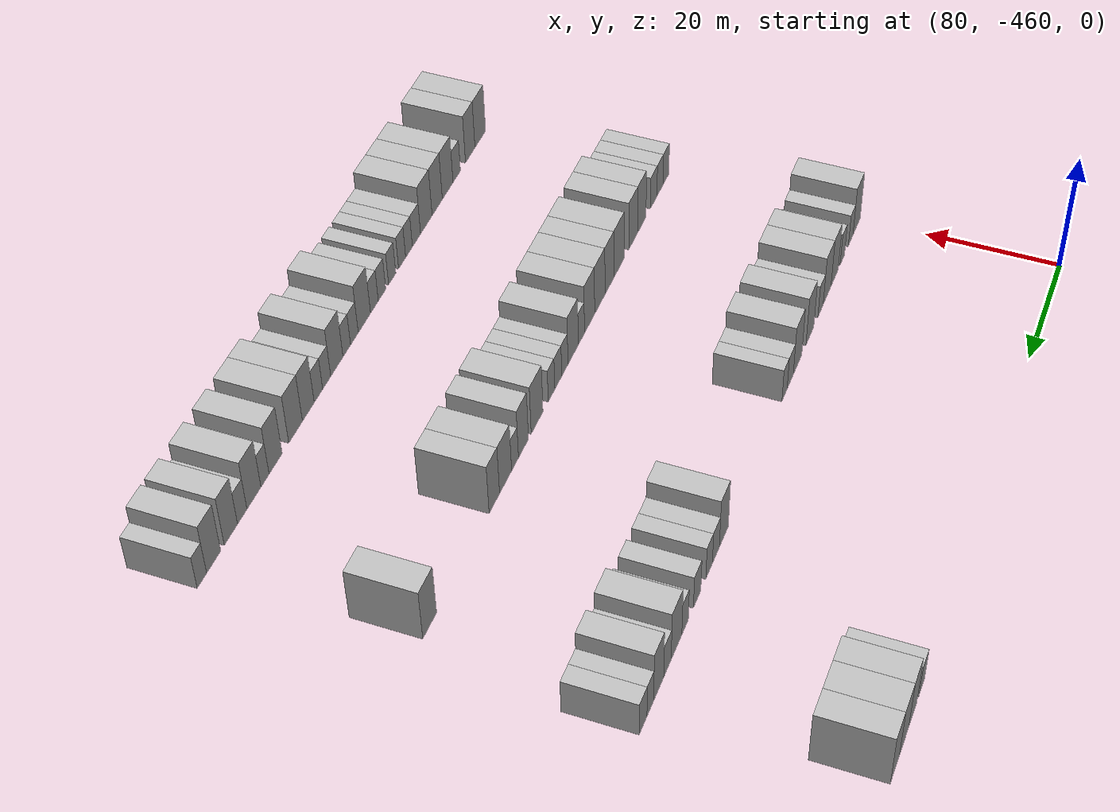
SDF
<sdf version="1.6">
 <world name="default">
  <model name="building_475">
   <static>1</static>
   <pose>85.0000 -379.9907 0 0.000000 0.000000 0.000000</pose>
   <link name="link">
    <pose>0 0 3.00 0 0 0</pose>
    <collision name="collision"><geometry><box><size>10.0000 2.8555 6.0000</size></box></geometry></collision>
    <visual name="visual">
     <cast_shadows>0</cast_shadows>
     <geometry><box><size>10.0000 2.8555 6.0000</size></box></geometry>
     <material>
      <script>
       <uri>model://HANNAS_wall/materials/scripts</uri>
       <uri>model://HANNAS_wall/materials/textures</uri>
       <name>vrc/HANNAS_wall</name>
      </script>
     </material>
    </visual>
   </link>
  </model>
  <model name="building_476">
   <static>1</static>
   <pose>85.0000 -375.6432 0 0.000000 0.000000 0.000000</pose>
   <link name="link">
    <pose>0 0 4.50 0 0 0</pose>
    <collision name="collision"><geometry><box><size>10.0000 3.8396 9.0000</size></box></geometry></collision>
    <visual name="visual">
     <cast_shadows>0</cast_shadows>
     <geometry><box><size>10.0000 3.8396 9.0000</size></box></geometry>
     <material>
      <script>
       <uri>model://HANNAS_wall/materials/scripts</uri>
       <uri>model://HANNAS_wall/materials/textures</uri>
       <name>vrc/HANNAS_wall</name>
      </script>
     </material>
    </visual>
   </link>
  </model>
  <model name="building_477">
   <static>1</static>
   <pose>85.0000 -371.5592 0 0.000000 0.000000 0.000000</pose>
   <link name="link">
    <pose>0 0 4.50 0 0 0</pose>
    <collision name="collision"><geometry><box><size>10.0000 4.3284 9.0000</size></box></geometry></collision>
    <visual name="visual">
     <cast_shadows>0</cast_shadows>
     <geometry><box><size>10.0000 4.3284 9.0000</size></box></geometry>
     <material>
      <script>
       <uri>model://HANNAS_wall/materials/scripts</uri>
       <uri>model://HANNAS_wall/materials/textures</uri>
       <name>vrc/HANNAS_wall</name>
      </script>
     </material>
    </visual>
   </link>
  </model>
  <model name="building_478">
   <static>1</static>
   <pose>85.0000 -367.3629 0 0.000000 0.000000 0.000000</pose>
   <link name="link">
    <pose>0 0 4.50 0 0 0</pose>
    <collision name="collision"><geometry><box><size>10.0000 4.0642 9.0000</size></box></geometry></collision>
    <visual name="visual">
     <cast_shadows>0</cast_shadows>
     <geometry><box><size>10.0000 4.0642 9.0000</size></box></geometry>
     <material>
      <script>
       <uri>model://HANNAS_wall/materials/scripts</uri>
       <uri>model://HANNAS_wall/materials/textures</uri>
       <name>vrc/HANNAS_wall</name>
      </script>
     </material>
    </visual>
   </link>
  </model>
  <model name="building_671">
   <static>1</static>
   <pose>115.0000 -458.0206 0 0.000000 0.000000 0.000000</pose>
   <link name="link">
    <pose>0 0 4.50 0 0 0</pose>
    <collision name="collision"><geometry><box><size>10.0000 3.9589 9.0000</size></box></geometry></collision>
    <visual name="visual">
     <cast_shadows>0</cast_shadows>
     <geometry><box><size>10.0000 3.9589 9.0000</size></box></geometry>
     <material>
      <script>
       <uri>model://HANNAS_wall/materials/scripts</uri>
       <uri>model://HANNAS_wall/materials/textures</uri>
       <name>vrc/HANNAS_wall</name>
      </script>
     </material>
    </visual>
   </link>
  </model>
  <model name="building_672">
   <static>1</static>
   <pose>115.0000 -454.7772 0 0.000000 0.000000 0.000000</pose>
   <link name="link">
    <pose>0 0 3.00 0 0 0</pose>
    <collision name="collision"><geometry><box><size>10.0000 2.5280 6.0000</size></box></geometry></collision>
    <visual name="visual">
     <cast_shadows>0</cast_shadows>
     <geometry><box><size>10.0000 2.5280 6.0000</size></box></geometry>
     <material>
      <script>
       <uri>model://HANNAS_wall/materials/scripts</uri>
       <uri>model://HANNAS_wall/materials/textures</uri>
       <name>vrc/HANNAS_wall</name>
      </script>
     </material>
    </visual>
   </link>
  </model>
  <model name="building_673">
   <static>1</static>
   <pose>115.0000 -450.3102 0 0.000000 0.000000 0.000000</pose>
   <link name="link">
    <pose>0 0 3.00 0 0 0</pose>
    <collision name="collision"><geometry><box><size>10.0000 2.4059 6.0000</size></box></geometry></collision>
    <visual name="visual">
     <cast_shadows>0</cast_shadows>
     <geometry><box><size>10.0000 2.4059 6.0000</size></box></geometry>
     <material>
      <script>
       <uri>model://HANNAS_wall/materials/scripts</uri>
       <uri>model://HANNAS_wall/materials/textures</uri>
       <name>vrc/HANNAS_wall</name>
      </script>
     </material>
    </visual>
   </link>
  </model>
  <model name="building_674">
   <static>1</static>
   <pose>115.0000 -446.2440 0 0.000000 0.000000 0.000000</pose>
   <link name="link">
    <pose>0 0 4.50 0 0 0</pose>
    <collision name="collision"><geometry><box><size>10.0000 3.7266 9.0000</size></box></geometry></collision>
    <visual name="visual">
     <cast_shadows>0</cast_shadows>
     <geometry><box><size>10.0000 3.7266 9.0000</size></box></geometry>
     <material>
      <script>
       <uri>model://HANNAS_wall/materials/scripts</uri>
       <uri>model://HANNAS_wall/materials/textures</uri>
       <name>vrc/HANNAS_wall</name>
      </script>
     </material>
    </visual>
   </link>
  </model>
  <model name="building_675">
   <static>1</static>
   <pose>115.0000 -442.3787 0 0.000000 0.000000 0.000000</pose>
   <link name="link">
    <pose>0 0 4.50 0 0 0</pose>
    <collision name="collision"><geometry><box><size>10.0000 4.0040 9.0000</size></box></geometry></collision>
    <visual name="visual">
     <cast_shadows>0</cast_shadows>
     <geometry><box><size>10.0000 4.0040 9.0000</size></box></geometry>
     <material>
      <script>
       <uri>model://HANNAS_wall/materials/scripts</uri>
       <uri>model://HANNAS_wall/materials/textures</uri>
       <name>vrc/HANNAS_wall</name>
      </script>
     </material>
    </visual>
   </link>
  </model>
  <model name="building_676">
   <static>1</static>
   <pose>115.0000 -439.0188 0 0.000000 0.000000 0.000000</pose>
   <link name="link">
    <pose>0 0 3.00 0 0 0</pose>
    <collision name="collision"><geometry><box><size>10.0000 2.7158 6.0000</size></box></geometry></collision>
    <visual name="visual">
     <cast_shadows>0</cast_shadows>
     <geometry><box><size>10.0000 2.7158 6.0000</size></box></geometry>
     <material>
      <script>
       <uri>model://HANNAS_wall/materials/scripts</uri>
       <uri>model://HANNAS_wall/materials/textures</uri>
       <name>vrc/HANNAS_wall</name>
      </script>
     </material>
    </visual>
   </link>
  </model>
  <model name="building_677">
   <static>1</static>
   <pose>115.0000 -433.6947 0 0.000000 0.000000 0.000000</pose>
   <link name="link">
    <pose>0 0 4.50 0 0 0</pose>
    <collision name="collision"><geometry><box><size>10.0000 3.9324 9.0000</size></box></geometry></collision>
    <visual name="visual">
     <cast_shadows>0</cast_shadows>
     <geometry><box><size>10.0000 3.9324 9.0000</size></box></geometry>
     <material>
      <script>
       <uri>model://HANNAS_wall/materials/scripts</uri>
       <uri>model://HANNAS_wall/materials/textures</uri>
       <name>vrc/HANNAS_wall</name>
      </script>
     </material>
    </visual>
   </link>
  </model>
  <model name="building_678">
   <static>1</static>
   <pose>115.0000 -427.6711 0 0.000000 0.000000 0.000000</pose>
   <link name="link">
    <pose>0 0 4.50 0 0 0</pose>
    <collision name="collision"><geometry><box><size>10.0000 4.1148 9.0000</size></box></geometry></collision>
    <visual name="visual">
     <cast_shadows>0</cast_shadows>
     <geometry><box><size>10.0000 4.1148 9.0000</size></box></geometry>
     <material>
      <script>
       <uri>model://HANNAS_wall/materials/scripts</uri>
       <uri>model://HANNAS_wall/materials/textures</uri>
       <name>vrc/HANNAS_wall</name>
      </script>
     </material>
    </visual>
   </link>
  </model>
  <model name="building_679">
   <static>1</static>
   <pose>115.0000 -424.1530 0 0.000000 0.000000 0.000000</pose>
   <link name="link">
    <pose>0 0 3.00 0 0 0</pose>
    <collision name="collision"><geometry><box><size>10.0000 2.9214 6.0000</size></box></geometry></collision>
    <visual name="visual">
     <cast_shadows>0</cast_shadows>
     <geometry><box><size>10.0000 2.9214 6.0000</size></box></geometry>
     <material>
      <script>
       <uri>model://HANNAS_wall/materials/scripts</uri>
       <uri>model://HANNAS_wall/materials/textures</uri>
       <name>vrc/HANNAS_wall</name>
      </script>
     </material>
    </visual>
   </link>
  </model>
  <model name="building_680">
   <static>1</static>
   <pose>115.0000 -421.4635 0 0.000000 0.000000 0.000000</pose>
   <link name="link">
    <pose>0 0 3.00 0 0 0</pose>
    <collision name="collision"><geometry><box><size>10.0000 2.4577 6.0000</size></box></geometry></collision>
    <visual name="visual">
     <cast_shadows>0</cast_shadows>
     <geometry><box><size>10.0000 2.4577 6.0000</size></box></geometry>
     <material>
      <script>
       <uri>model://HANNAS_wall/materials/scripts</uri>
       <uri>model://HANNAS_wall/materials/textures</uri>
       <name>vrc/HANNAS_wall</name>
      </script>
     </material>
    </visual>
   </link>
  </model>
  <model name="building_681">
   <static>1</static>
   <pose>115.0000 -394.5818 0 0.000000 0.000000 0.000000</pose>
   <link name="link">
    <pose>0 0 4.50 0 0 0</pose>
    <collision name="collision"><geometry><box><size>10.0000 3.7686 9.0000</size></box></geometry></collision>
    <visual name="visual">
     <cast_shadows>0</cast_shadows>
     <geometry><box><size>10.0000 3.7686 9.0000</size></box></geometry>
     <material>
      <script>
       <uri>model://HANNAS_wall/materials/scripts</uri>
       <uri>model://HANNAS_wall/materials/textures</uri>
       <name>vrc/HANNAS_wall</name>
      </script>
     </material>
    </visual>
   </link>
  </model>
  <model name="building_682">
   <static>1</static>
   <pose>115.0000 -391.2707 0 0.000000 0.000000 0.000000</pose>
   <link name="link">
    <pose>0 0 3.00 0 0 0</pose>
    <collision name="collision"><geometry><box><size>10.0000 2.8538 6.0000</size></box></geometry></collision>
    <visual name="visual">
     <cast_shadows>0</cast_shadows>
     <geometry><box><size>10.0000 2.8538 6.0000</size></box></geometry>
     <material>
      <script>
       <uri>model://HANNAS_wall/materials/scripts</uri>
       <uri>model://HANNAS_wall/materials/textures</uri>
       <name>vrc/HANNAS_wall</name>
      </script>
     </material>
    </visual>
   </link>
  </model>
  <model name="building_683">
   <static>1</static>
   <pose>115.0000 -388.5188 0 0.000000 0.000000 0.000000</pose>
   <link name="link">
    <pose>0 0 3.00 0 0 0</pose>
    <collision name="collision"><geometry><box><size>10.0000 2.6500 6.0000</size></box></geometry></collision>
    <visual name="visual">
     <cast_shadows>0</cast_shadows>
     <geometry><box><size>10.0000 2.6500 6.0000</size></box></geometry>
     <material>
      <script>
       <uri>model://HANNAS_wall/materials/scripts</uri>
       <uri>model://HANNAS_wall/materials/textures</uri>
       <name>vrc/HANNAS_wall</name>
      </script>
     </material>
    </visual>
   </link>
  </model>
  <model name="building_684">
   <static>1</static>
   <pose>115.0000 -383.7218 0 0.000000 0.000000 0.000000</pose>
   <link name="link">
    <pose>0 0 3.00 0 0 0</pose>
    <collision name="collision"><geometry><box><size>10.0000 2.9440 6.0000</size></box></geometry></collision>
    <visual name="visual">
     <cast_shadows>0</cast_shadows>
     <geometry><box><size>10.0000 2.9440 6.0000</size></box></geometry>
     <material>
      <script>
       <uri>model://HANNAS_wall/materials/scripts</uri>
       <uri>model://HANNAS_wall/materials/textures</uri>
       <name>vrc/HANNAS_wall</name>
      </script>
     </material>
    </visual>
   </link>
  </model>
  <model name="building_685">
   <static>1</static>
   <pose>115.0000 -378.9825 0 0.000000 0.000000 0.000000</pose>
   <link name="link">
    <pose>0 0 3.00 0 0 0</pose>
    <collision name="collision"><geometry><box><size>10.0000 2.5347 6.0000</size></box></geometry></collision>
    <visual name="visual">
     <cast_shadows>0</cast_shadows>
     <geometry><box><size>10.0000 2.5347 6.0000</size></box></geometry>
     <material>
      <script>
       <uri>model://HANNAS_wall/materials/scripts</uri>
       <uri>model://HANNAS_wall/materials/textures</uri>
       <name>vrc/HANNAS_wall</name>
      </script>
     </material>
    </visual>
   </link>
  </model>
  <model name="building_686">
   <static>1</static>
   <pose>115.0000 -375.6834 0 0.000000 0.000000 0.000000</pose>
   <link name="link">
    <pose>0 0 4.50 0 0 0</pose>
    <collision name="collision"><geometry><box><size>10.0000 4.0635 9.0000</size></box></geometry></collision>
    <visual name="visual">
     <cast_shadows>0</cast_shadows>
     <geometry><box><size>10.0000 4.0635 9.0000</size></box></geometry>
     <material>
      <script>
       <uri>model://HANNAS_wall/materials/scripts</uri>
       <uri>model://HANNAS_wall/materials/textures</uri>
       <name>vrc/HANNAS_wall</name>
      </script>
     </material>
    </visual>
   </link>
  </model>
  <model name="building_687">
   <static>1</static>
   <pose>115.0000 -372.2460 0 0.000000 0.000000 0.000000</pose>
   <link name="link">
    <pose>0 0 3.00 0 0 0</pose>
    <collision name="collision"><geometry><box><size>10.0000 2.8113 6.0000</size></box></geometry></collision>
    <visual name="visual">
     <cast_shadows>0</cast_shadows>
     <geometry><box><size>10.0000 2.8113 6.0000</size></box></geometry>
     <material>
      <script>
       <uri>model://HANNAS_wall/materials/scripts</uri>
       <uri>model://HANNAS_wall/materials/textures</uri>
       <name>vrc/HANNAS_wall</name>
      </script>
     </material>
    </visual>
   </link>
  </model>
  <model name="building_688">
   <static>1</static>
   <pose>115.0000 -368.9955 0 0.000000 0.000000 0.000000</pose>
   <link name="link">
    <pose>0 0 4.50 0 0 0</pose>
    <collision name="collision"><geometry><box><size>10.0000 3.6896 9.0000</size></box></geometry></collision>
    <visual name="visual">
     <cast_shadows>0</cast_shadows>
     <geometry><box><size>10.0000 3.6896 9.0000</size></box></geometry>
     <material>
      <script>
       <uri>model://HANNAS_wall/materials/scripts</uri>
       <uri>model://HANNAS_wall/materials/textures</uri>
       <name>vrc/HANNAS_wall</name>
      </script>
     </material>
    </visual>
   </link>
  </model>
  <model name="building_689">
   <static>1</static>
   <pose>115.0000 -365.9206 0 0.000000 0.000000 0.000000</pose>
   <link name="link">
    <pose>0 0 3.00 0 0 0</pose>
    <collision name="collision"><geometry><box><size>10.0000 2.4603 6.0000</size></box></geometry></collision>
    <visual name="visual">
     <cast_shadows>0</cast_shadows>
     <geometry><box><size>10.0000 2.4603 6.0000</size></box></geometry>
     <material>
      <script>
       <uri>model://HANNAS_wall/materials/scripts</uri>
       <uri>model://HANNAS_wall/materials/textures</uri>
       <name>vrc/HANNAS_wall</name>
      </script>
     </material>
    </visual>
   </link>
  </model>
  <model name="building_690">
   <static>1</static>
   <pose>115.0000 -363.3008 0 0.000000 0.000000 0.000000</pose>
   <link name="link">
    <pose>0 0 3.00 0 0 0</pose>
    <collision name="collision"><geometry><box><size>10.0000 2.7793 6.0000</size></box></geometry></collision>
    <visual name="visual">
     <cast_shadows>0</cast_shadows>
     <geometry><box><size>10.0000 2.7793 6.0000</size></box></geometry>
     <material>
      <script>
       <uri>model://HANNAS_wall/materials/scripts</uri>
       <uri>model://HANNAS_wall/materials/textures</uri>
       <name>vrc/HANNAS_wall</name>
      </script>
     </material>
    </visual>
   </link>
  </model>
  <model name="building_893">
   <static>1</static>
   <pose>145.0000 -458.6550 0 0.000000 0.000000 0.000000</pose>
   <link name="link">
    <pose>0 0 3.00 0 0 0</pose>
    <collision name="collision"><geometry><box><size>10.0000 2.6901 6.0000</size></box></geometry></collision>
    <visual name="visual">
     <cast_shadows>0</cast_shadows>
     <geometry><box><size>10.0000 2.6901 6.0000</size></box></geometry>
     <material>
      <script>
       <uri>model://HANNAS_wall/materials/scripts</uri>
       <uri>model://HANNAS_wall/materials/textures</uri>
       <name>vrc/HANNAS_wall</name>
      </script>
     </material>
    </visual>
   </link>
  </model>
  <model name="building_894">
   <static>1</static>
   <pose>145.0000 -455.9149 0 0.000000 0.000000 0.000000</pose>
   <link name="link">
    <pose>0 0 3.00 0 0 0</pose>
    <collision name="collision"><geometry><box><size>10.0000 2.7900 6.0000</size></box></geometry></collision>
    <visual name="visual">
     <cast_shadows>0</cast_shadows>
     <geometry><box><size>10.0000 2.7900 6.0000</size></box></geometry>
     <material>
      <script>
       <uri>model://HANNAS_wall/materials/scripts</uri>
       <uri>model://HANNAS_wall/materials/textures</uri>
       <name>vrc/HANNAS_wall</name>
      </script>
     </material>
    </visual>
   </link>
  </model>
  <model name="building_895">
   <static>1</static>
   <pose>145.0000 -453.0426 0 0.000000 0.000000 0.000000</pose>
   <link name="link">
    <pose>0 0 3.00 0 0 0</pose>
    <collision name="collision"><geometry><box><size>10.0000 2.9546 6.0000</size></box></geometry></collision>
    <visual name="visual">
     <cast_shadows>0</cast_shadows>
     <geometry><box><size>10.0000 2.9546 6.0000</size></box></geometry>
     <material>
      <script>
       <uri>model://HANNAS_wall/materials/scripts</uri>
       <uri>model://HANNAS_wall/materials/textures</uri>
       <name>vrc/HANNAS_wall</name>
      </script>
     </material>
    </visual>
   </link>
  </model>
  <model name="building_896">
   <static>1</static>
   <pose>145.0000 -447.7108 0 0.000000 0.000000 0.000000</pose>
   <link name="link">
    <pose>0 0 4.50 0 0 0</pose>
    <collision name="collision"><geometry><box><size>10.0000 3.7089 9.0000</size></box></geometry></collision>
    <visual name="visual">
     <cast_shadows>0</cast_shadows>
     <geometry><box><size>10.0000 3.7089 9.0000</size></box></geometry>
     <material>
      <script>
       <uri>model://HANNAS_wall/materials/scripts</uri>
       <uri>model://HANNAS_wall/materials/textures</uri>
       <name>vrc/HANNAS_wall</name>
      </script>
     </material>
    </visual>
   </link>
  </model>
  <model name="building_897">
   <static>1</static>
   <pose>145.0000 -443.9258 0 0.000000 0.000000 0.000000</pose>
   <link name="link">
    <pose>0 0 4.50 0 0 0</pose>
    <collision name="collision"><geometry><box><size>10.0000 3.8612 9.0000</size></box></geometry></collision>
    <visual name="visual">
     <cast_shadows>0</cast_shadows>
     <geometry><box><size>10.0000 3.8612 9.0000</size></box></geometry>
     <material>
      <script>
       <uri>model://HANNAS_wall/materials/scripts</uri>
       <uri>model://HANNAS_wall/materials/textures</uri>
       <name>vrc/HANNAS_wall</name>
      </script>
     </material>
    </visual>
   </link>
  </model>
  <model name="building_898">
   <static>1</static>
   <pose>145.0000 -437.7957 0 0.000000 0.000000 0.000000</pose>
   <link name="link">
    <pose>0 0 4.50 0 0 0</pose>
    <collision name="collision"><geometry><box><size>10.0000 4.3989 9.0000</size></box></geometry></collision>
    <visual name="visual">
     <cast_shadows>0</cast_shadows>
     <geometry><box><size>10.0000 4.3989 9.0000</size></box></geometry>
     <material>
      <script>
       <uri>model://HANNAS_wall/materials/scripts</uri>
       <uri>model://HANNAS_wall/materials/textures</uri>
       <name>vrc/HANNAS_wall</name>
      </script>
     </material>
    </visual>
   </link>
  </model>
  <model name="building_899">
   <static>1</static>
   <pose>145.0000 -433.7573 0 0.000000 0.000000 0.000000</pose>
   <link name="link">
    <pose>0 0 4.50 0 0 0</pose>
    <collision name="collision"><geometry><box><size>10.0000 3.6780 9.0000</size></box></geometry></collision>
    <visual name="visual">
     <cast_shadows>0</cast_shadows>
     <geometry><box><size>10.0000 3.6780 9.0000</size></box></geometry>
     <material>
      <script>
       <uri>model://HANNAS_wall/materials/scripts</uri>
       <uri>model://HANNAS_wall/materials/textures</uri>
       <name>vrc/HANNAS_wall</name>
      </script>
     </material>
    </visual>
   </link>
  </model>
  <model name="building_900">
   <static>1</static>
   <pose>145.0000 -429.7781 0 0.000000 0.000000 0.000000</pose>
   <link name="link">
    <pose>0 0 4.50 0 0 0</pose>
    <collision name="collision"><geometry><box><size>10.0000 4.2804 9.0000</size></box></geometry></collision>
    <visual name="visual">
     <cast_shadows>0</cast_shadows>
     <geometry><box><size>10.0000 4.2804 9.0000</size></box></geometry>
     <material>
      <script>
       <uri>model://HANNAS_wall/materials/scripts</uri>
       <uri>model://HANNAS_wall/materials/textures</uri>
       <name>vrc/HANNAS_wall</name>
      </script>
     </material>
    </visual>
   </link>
  </model>
  <model name="building_901">
   <static>1</static>
   <pose>145.0000 -425.5736 0 0.000000 0.000000 0.000000</pose>
   <link name="link">
    <pose>0 0 4.50 0 0 0</pose>
    <collision name="collision"><geometry><box><size>10.0000 4.1284 9.0000</size></box></geometry></collision>
    <visual name="visual">
     <cast_shadows>0</cast_shadows>
     <geometry><box><size>10.0000 4.1284 9.0000</size></box></geometry>
     <material>
      <script>
       <uri>model://HANNAS_wall/materials/scripts</uri>
       <uri>model://HANNAS_wall/materials/textures</uri>
       <name>vrc/HANNAS_wall</name>
      </script>
     </material>
    </visual>
   </link>
  </model>
  <model name="building_902">
   <static>1</static>
   <pose>145.0000 -422.2871 0 0.000000 0.000000 0.000000</pose>
   <link name="link">
    <pose>0 0 3.00 0 0 0</pose>
    <collision name="collision"><geometry><box><size>10.0000 2.4446 6.0000</size></box></geometry></collision>
    <visual name="visual">
     <cast_shadows>0</cast_shadows>
     <geometry><box><size>10.0000 2.4446 6.0000</size></box></geometry>
     <material>
      <script>
       <uri>model://HANNAS_wall/materials/scripts</uri>
       <uri>model://HANNAS_wall/materials/textures</uri>
       <name>vrc/HANNAS_wall</name>
      </script>
     </material>
    </visual>
   </link>
  </model>
  <model name="building_903">
   <static>1</static>
   <pose>145.0000 -419.0156 0 0.000000 0.000000 0.000000</pose>
   <link name="link">
    <pose>0 0 4.50 0 0 0</pose>
    <collision name="collision"><geometry><box><size>10.0000 4.0984 9.0000</size></box></geometry></collision>
    <visual name="visual">
     <cast_shadows>0</cast_shadows>
     <geometry><box><size>10.0000 4.0984 9.0000</size></box></geometry>
     <material>
      <script>
       <uri>model://HANNAS_wall/materials/scripts</uri>
       <uri>model://HANNAS_wall/materials/textures</uri>
       <name>vrc/HANNAS_wall</name>
      </script>
     </material>
    </visual>
   </link>
  </model>
  <model name="building_904">
   <static>1</static>
   <pose>145.0000 -415.7482 0 0.000000 0.000000 0.000000</pose>
   <link name="link">
    <pose>0 0 3.00 0 0 0</pose>
    <collision name="collision"><geometry><box><size>10.0000 2.4365 6.0000</size></box></geometry></collision>
    <visual name="visual">
     <cast_shadows>0</cast_shadows>
     <geometry><box><size>10.0000 2.4365 6.0000</size></box></geometry>
     <material>
      <script>
       <uri>model://HANNAS_wall/materials/scripts</uri>
       <uri>model://HANNAS_wall/materials/textures</uri>
       <name>vrc/HANNAS_wall</name>
      </script>
     </material>
    </visual>
   </link>
  </model>
  <model name="building_905">
   <static>1</static>
   <pose>145.0000 -413.1982 0 0.000000 0.000000 0.000000</pose>
   <link name="link">
    <pose>0 0 3.00 0 0 0</pose>
    <collision name="collision"><geometry><box><size>10.0000 2.6635 6.0000</size></box></geometry></collision>
    <visual name="visual">
     <cast_shadows>0</cast_shadows>
     <geometry><box><size>10.0000 2.6635 6.0000</size></box></geometry>
     <material>
      <script>
       <uri>model://HANNAS_wall/materials/scripts</uri>
       <uri>model://HANNAS_wall/materials/textures</uri>
       <name>vrc/HANNAS_wall</name>
      </script>
     </material>
    </visual>
   </link>
  </model>
  <model name="building_906">
   <static>1</static>
   <pose>145.0000 -410.6186 0 0.000000 0.000000 0.000000</pose>
   <link name="link">
    <pose>0 0 3.00 0 0 0</pose>
    <collision name="collision"><geometry><box><size>10.0000 2.4957 6.0000</size></box></geometry></collision>
    <visual name="visual">
     <cast_shadows>0</cast_shadows>
     <geometry><box><size>10.0000 2.4957 6.0000</size></box></geometry>
     <material>
      <script>
       <uri>model://HANNAS_wall/materials/scripts</uri>
       <uri>model://HANNAS_wall/materials/textures</uri>
       <name>vrc/HANNAS_wall</name>
      </script>
     </material>
    </visual>
   </link>
  </model>
  <model name="building_907">
   <static>1</static>
   <pose>145.0000 -405.1858 0 0.000000 0.000000 0.000000</pose>
   <link name="link">
    <pose>0 0 4.50 0 0 0</pose>
    <collision name="collision"><geometry><box><size>10.0000 4.3701 9.0000</size></box></geometry></collision>
    <visual name="visual">
     <cast_shadows>0</cast_shadows>
     <geometry><box><size>10.0000 4.3701 9.0000</size></box></geometry>
     <material>
      <script>
       <uri>model://HANNAS_wall/materials/scripts</uri>
       <uri>model://HANNAS_wall/materials/textures</uri>
       <name>vrc/HANNAS_wall</name>
      </script>
     </material>
    </visual>
   </link>
  </model>
  <model name="building_908">
   <static>1</static>
   <pose>145.0000 -400.1877 0 0.000000 0.000000 0.000000</pose>
   <link name="link">
    <pose>0 0 4.50 0 0 0</pose>
    <collision name="collision"><geometry><box><size>10.0000 3.6261 9.0000</size></box></geometry></collision>
    <visual name="visual">
     <cast_shadows>0</cast_shadows>
     <geometry><box><size>10.0000 3.6261 9.0000</size></box></geometry>
     <material>
      <script>
       <uri>model://HANNAS_wall/materials/scripts</uri>
       <uri>model://HANNAS_wall/materials/textures</uri>
       <name>vrc/HANNAS_wall</name>
      </script>
     </material>
    </visual>
   </link>
  </model>
  <model name="building_909">
   <static>1</static>
   <pose>145.0000 -397.1473 0 0.000000 0.000000 0.000000</pose>
   <link name="link">
    <pose>0 0 3.00 0 0 0</pose>
    <collision name="collision"><geometry><box><size>10.0000 2.4546 6.0000</size></box></geometry></collision>
    <visual name="visual">
     <cast_shadows>0</cast_shadows>
     <geometry><box><size>10.0000 2.4546 6.0000</size></box></geometry>
     <material>
      <script>
       <uri>model://HANNAS_wall/materials/scripts</uri>
       <uri>model://HANNAS_wall/materials/textures</uri>
       <name>vrc/HANNAS_wall</name>
      </script>
     </material>
    </visual>
   </link>
  </model>
  <model name="building_910">
   <static>1</static>
   <pose>145.0000 -393.7917 0 0.000000 0.000000 0.000000</pose>
   <link name="link">
    <pose>0 0 4.50 0 0 0</pose>
    <collision name="collision"><geometry><box><size>10.0000 4.2566 9.0000</size></box></geometry></collision>
    <visual name="visual">
     <cast_shadows>0</cast_shadows>
     <geometry><box><size>10.0000 4.2566 9.0000</size></box></geometry>
     <material>
      <script>
       <uri>model://HANNAS_wall/materials/scripts</uri>
       <uri>model://HANNAS_wall/materials/textures</uri>
       <name>vrc/HANNAS_wall</name>
      </script>
     </material>
    </visual>
   </link>
  </model>
  <model name="building_911">
   <static>1</static>
   <pose>145.0000 -389.8491 0 0.000000 0.000000 0.000000</pose>
   <link name="link">
    <pose>0 0 4.50 0 0 0</pose>
    <collision name="collision"><geometry><box><size>10.0000 3.6285 9.0000</size></box></geometry></collision>
    <visual name="visual">
     <cast_shadows>0</cast_shadows>
     <geometry><box><size>10.0000 3.6285 9.0000</size></box></geometry>
     <material>
      <script>
       <uri>model://HANNAS_wall/materials/scripts</uri>
       <uri>model://HANNAS_wall/materials/textures</uri>
       <name>vrc/HANNAS_wall</name>
      </script>
     </material>
    </visual>
   </link>
  </model>
  <model name="building_912">
   <static>1</static>
   <pose>145.0000 -368.4976 0 0.000000 0.000000 0.000000</pose>
   <link name="link">
    <pose>0 0 4.50 0 0 0</pose>
    <collision name="collision"><geometry><box><size>10.0000 4.3581 9.0000</size></box></geometry></collision>
    <visual name="visual">
     <cast_shadows>0</cast_shadows>
     <geometry><box><size>10.0000 4.3581 9.0000</size></box></geometry>
     <material>
      <script>
       <uri>model://HANNAS_wall/materials/scripts</uri>
       <uri>model://HANNAS_wall/materials/textures</uri>
       <name>vrc/HANNAS_wall</name>
      </script>
     </material>
    </visual>
   </link>
  </model>
  <model name="building_1118">
   <static>1</static>
   <pose>175.0000 -457.8582 0 0.000000 0.000000 0.000000</pose>
   <link name="link">
    <pose>0 0 4.50 0 0 0</pose>
    <collision name="collision"><geometry><box><size>10.0000 4.2835 9.0000</size></box></geometry></collision>
    <visual name="visual">
     <cast_shadows>0</cast_shadows>
     <geometry><box><size>10.0000 4.2835 9.0000</size></box></geometry>
     <material>
      <script>
       <uri>model://HANNAS_wall/materials/scripts</uri>
       <uri>model://HANNAS_wall/materials/textures</uri>
       <name>vrc/HANNAS_wall</name>
      </script>
     </material>
    </visual>
   </link>
  </model>
  <model name="building_1119">
   <static>1</static>
   <pose>175.0000 -453.8347 0 0.000000 0.000000 0.000000</pose>
   <link name="link">
    <pose>0 0 4.50 0 0 0</pose>
    <collision name="collision"><geometry><box><size>10.0000 3.7635 9.0000</size></box></geometry></collision>
    <visual name="visual">
     <cast_shadows>0</cast_shadows>
     <geometry><box><size>10.0000 3.7635 9.0000</size></box></geometry>
     <material>
      <script>
       <uri>model://HANNAS_wall/materials/scripts</uri>
       <uri>model://HANNAS_wall/materials/textures</uri>
       <name>vrc/HANNAS_wall</name>
      </script>
     </material>
    </visual>
   </link>
  </model>
  <model name="building_1120">
   <static>1</static>
   <pose>175.0000 -448.5138 0 0.000000 0.000000 0.000000</pose>
   <link name="link">
    <pose>0 0 3.00 0 0 0</pose>
    <collision name="collision"><geometry><box><size>10.0000 2.8783 6.0000</size></box></geometry></collision>
    <visual name="visual">
     <cast_shadows>0</cast_shadows>
     <geometry><box><size>10.0000 2.8783 6.0000</size></box></geometry>
     <material>
      <script>
       <uri>model://HANNAS_wall/materials/scripts</uri>
       <uri>model://HANNAS_wall/materials/textures</uri>
       <name>vrc/HANNAS_wall</name>
      </script>
     </material>
    </visual>
   </link>
  </model>
  <model name="building_1121">
   <static>1</static>
   <pose>175.0000 -445.0196 0 0.000000 0.000000 0.000000</pose>
   <link name="link">
    <pose>0 0 4.50 0 0 0</pose>
    <collision name="collision"><geometry><box><size>10.0000 4.1102 9.0000</size></box></geometry></collision>
    <visual name="visual">
     <cast_shadows>0</cast_shadows>
     <geometry><box><size>10.0000 4.1102 9.0000</size></box></geometry>
     <material>
      <script>
       <uri>model://HANNAS_wall/materials/scripts</uri>
       <uri>model://HANNAS_wall/materials/textures</uri>
       <name>vrc/HANNAS_wall</name>
      </script>
     </material>
    </visual>
   </link>
  </model>
  <model name="building_1122">
   <static>1</static>
   <pose>175.0000 -441.0266 0 0.000000 0.000000 0.000000</pose>
   <link name="link">
    <pose>0 0 4.50 0 0 0</pose>
    <collision name="collision"><geometry><box><size>10.0000 3.8758 9.0000</size></box></geometry></collision>
    <visual name="visual">
     <cast_shadows>0</cast_shadows>
     <geometry><box><size>10.0000 3.8758 9.0000</size></box></geometry>
     <material>
      <script>
       <uri>model://HANNAS_wall/materials/scripts</uri>
       <uri>model://HANNAS_wall/materials/textures</uri>
       <name>vrc/HANNAS_wall</name>
      </script>
     </material>
    </visual>
   </link>
  </model>
  <model name="building_1123">
   <static>1</static>
   <pose>175.0000 -436.9400 0 0.000000 0.000000 0.000000</pose>
   <link name="link">
    <pose>0 0 4.50 0 0 0</pose>
    <collision name="collision"><geometry><box><size>10.0000 4.2973 9.0000</size></box></geometry></collision>
    <visual name="visual">
     <cast_shadows>0</cast_shadows>
     <geometry><box><size>10.0000 4.2973 9.0000</size></box></geometry>
     <material>
      <script>
       <uri>model://HANNAS_wall/materials/scripts</uri>
       <uri>model://HANNAS_wall/materials/textures</uri>
       <name>vrc/HANNAS_wall</name>
      </script>
     </material>
    </visual>
   </link>
  </model>
  <model name="building_1124">
   <static>1</static>
   <pose>175.0000 -433.2973 0 0.000000 0.000000 0.000000</pose>
   <link name="link">
    <pose>0 0 3.00 0 0 0</pose>
    <collision name="collision"><geometry><box><size>10.0000 2.9881 6.0000</size></box></geometry></collision>
    <visual name="visual">
     <cast_shadows>0</cast_shadows>
     <geometry><box><size>10.0000 2.9881 6.0000</size></box></geometry>
     <material>
      <script>
       <uri>model://HANNAS_wall/materials/scripts</uri>
       <uri>model://HANNAS_wall/materials/textures</uri>
       <name>vrc/HANNAS_wall</name>
      </script>
     </material>
    </visual>
   </link>
  </model>
  <model name="building_1125">
   <static>1</static>
   <pose>175.0000 -430.5783 0 0.000000 0.000000 0.000000</pose>
   <link name="link">
    <pose>0 0 3.00 0 0 0</pose>
    <collision name="collision"><geometry><box><size>10.0000 2.4498 6.0000</size></box></geometry></collision>
    <visual name="visual">
     <cast_shadows>0</cast_shadows>
     <geometry><box><size>10.0000 2.4498 6.0000</size></box></geometry>
     <material>
      <script>
       <uri>model://HANNAS_wall/materials/scripts</uri>
       <uri>model://HANNAS_wall/materials/textures</uri>
       <name>vrc/HANNAS_wall</name>
      </script>
     </material>
    </visual>
   </link>
  </model>
  <model name="building_1126">
   <static>1</static>
   <pose>175.0000 -428.0852 0 0.000000 0.000000 0.000000</pose>
   <link name="link">
    <pose>0 0 3.00 0 0 0</pose>
    <collision name="collision"><geometry><box><size>10.0000 2.5365 6.0000</size></box></geometry></collision>
    <visual name="visual">
     <cast_shadows>0</cast_shadows>
     <geometry><box><size>10.0000 2.5365 6.0000</size></box></geometry>
     <material>
      <script>
       <uri>model://HANNAS_wall/materials/scripts</uri>
       <uri>model://HANNAS_wall/materials/textures</uri>
       <name>vrc/HANNAS_wall</name>
      </script>
     </material>
    </visual>
   </link>
  </model>
  <model name="building_1127">
   <static>1</static>
   <pose>175.0000 -424.5346 0 0.000000 0.000000 0.000000</pose>
   <link name="link">
    <pose>0 0 3.00 0 0 0</pose>
    <collision name="collision"><geometry><box><size>10.0000 2.5645 6.0000</size></box></geometry></collision>
    <visual name="visual">
     <cast_shadows>0</cast_shadows>
     <geometry><box><size>10.0000 2.5645 6.0000</size></box></geometry>
     <material>
      <script>
       <uri>model://HANNAS_wall/materials/scripts</uri>
       <uri>model://HANNAS_wall/materials/textures</uri>
       <name>vrc/HANNAS_wall</name>
      </script>
     </material>
    </visual>
   </link>
  </model>
  <model name="building_1128">
   <static>1</static>
   <pose>175.0000 -420.9565 0 0.000000 0.000000 0.000000</pose>
   <link name="link">
    <pose>0 0 3.00 0 0 0</pose>
    <collision name="collision"><geometry><box><size>10.0000 2.5917 6.0000</size></box></geometry></collision>
    <visual name="visual">
     <cast_shadows>0</cast_shadows>
     <geometry><box><size>10.0000 2.5917 6.0000</size></box></geometry>
     <material>
      <script>
       <uri>model://HANNAS_wall/materials/scripts</uri>
       <uri>model://HANNAS_wall/materials/textures</uri>
       <name>vrc/HANNAS_wall</name>
      </script>
     </material>
    </visual>
   </link>
  </model>
  <model name="building_1129">
   <static>1</static>
   <pose>175.0000 -418.3241 0 0.000000 0.000000 0.000000</pose>
   <link name="link">
    <pose>0 0 3.00 0 0 0</pose>
    <collision name="collision"><geometry><box><size>10.0000 2.6730 6.0000</size></box></geometry></collision>
    <visual name="visual">
     <cast_shadows>0</cast_shadows>
     <geometry><box><size>10.0000 2.6730 6.0000</size></box></geometry>
     <material>
      <script>
       <uri>model://HANNAS_wall/materials/scripts</uri>
       <uri>model://HANNAS_wall/materials/textures</uri>
       <name>vrc/HANNAS_wall</name>
      </script>
     </material>
    </visual>
   </link>
  </model>
  <model name="building_1130">
   <static>1</static>
   <pose>175.0000 -414.8908 0 0.000000 0.000000 0.000000</pose>
   <link name="link">
    <pose>0 0 4.50 0 0 0</pose>
    <collision name="collision"><geometry><box><size>10.0000 4.1937 9.0000</size></box></geometry></collision>
    <visual name="visual">
     <cast_shadows>0</cast_shadows>
     <geometry><box><size>10.0000 4.1937 9.0000</size></box></geometry>
     <material>
      <script>
       <uri>model://HANNAS_wall/materials/scripts</uri>
       <uri>model://HANNAS_wall/materials/textures</uri>
       <name>vrc/HANNAS_wall</name>
      </script>
     </material>
    </visual>
   </link>
  </model>
  <model name="building_1131">
   <static>1</static>
   <pose>175.0000 -411.5115 0 0.000000 0.000000 0.000000</pose>
   <link name="link">
    <pose>0 0 3.00 0 0 0</pose>
    <collision name="collision"><geometry><box><size>10.0000 2.5650 6.0000</size></box></geometry></collision>
    <visual name="visual">
     <cast_shadows>0</cast_shadows>
     <geometry><box><size>10.0000 2.5650 6.0000</size></box></geometry>
     <material>
      <script>
       <uri>model://HANNAS_wall/materials/scripts</uri>
       <uri>model://HANNAS_wall/materials/textures</uri>
       <name>vrc/HANNAS_wall</name>
      </script>
     </material>
    </visual>
   </link>
  </model>
  <model name="building_1132">
   <static>1</static>
   <pose>175.0000 -408.9648 0 0.000000 0.000000 0.000000</pose>
   <link name="link">
    <pose>0 0 3.00 0 0 0</pose>
    <collision name="collision"><geometry><box><size>10.0000 2.5284 6.0000</size></box></geometry></collision>
    <visual name="visual">
     <cast_shadows>0</cast_shadows>
     <geometry><box><size>10.0000 2.5284 6.0000</size></box></geometry>
     <material>
      <script>
       <uri>model://HANNAS_wall/materials/scripts</uri>
       <uri>model://HANNAS_wall/materials/textures</uri>
       <name>vrc/HANNAS_wall</name>
      </script>
     </material>
    </visual>
   </link>
  </model>
  <model name="building_1133">
   <static>1</static>
   <pose>175.0000 -405.6922 0 0.000000 0.000000 0.000000</pose>
   <link name="link">
    <pose>0 0 4.50 0 0 0</pose>
    <collision name="collision"><geometry><box><size>10.0000 4.0169 9.0000</size></box></geometry></collision>
    <visual name="visual">
     <cast_shadows>0</cast_shadows>
     <geometry><box><size>10.0000 4.0169 9.0000</size></box></geometry>
     <material>
      <script>
       <uri>model://HANNAS_wall/materials/scripts</uri>
       <uri>model://HANNAS_wall/materials/textures</uri>
       <name>vrc/HANNAS_wall</name>
      </script>
     </material>
    </visual>
   </link>
  </model>
  <model name="building_1134">
   <static>1</static>
   <pose>175.0000 -402.3849 0 0.000000 0.000000 0.000000</pose>
   <link name="link">
    <pose>0 0 3.00 0 0 0</pose>
    <collision name="collision"><geometry><box><size>10.0000 2.5976 6.0000</size></box></geometry></collision>
    <visual name="visual">
     <cast_shadows>0</cast_shadows>
     <geometry><box><size>10.0000 2.5976 6.0000</size></box></geometry>
     <material>
      <script>
       <uri>model://HANNAS_wall/materials/scripts</uri>
       <uri>model://HANNAS_wall/materials/textures</uri>
       <name>vrc/HANNAS_wall</name>
      </script>
     </material>
    </visual>
   </link>
  </model>
  <model name="building_1135">
   <static>1</static>
   <pose>175.0000 -399.7366 0 0.000000 0.000000 0.000000</pose>
   <link name="link">
    <pose>0 0 3.00 0 0 0</pose>
    <collision name="collision"><geometry><box><size>10.0000 2.6991 6.0000</size></box></geometry></collision>
    <visual name="visual">
     <cast_shadows>0</cast_shadows>
     <geometry><box><size>10.0000 2.6991 6.0000</size></box></geometry>
     <material>
      <script>
       <uri>model://HANNAS_wall/materials/scripts</uri>
       <uri>model://HANNAS_wall/materials/textures</uri>
       <name>vrc/HANNAS_wall</name>
      </script>
     </material>
    </visual>
   </link>
  </model>
  <model name="building_1136">
   <static>1</static>
   <pose>175.0000 -396.5334 0 0.000000 0.000000 0.000000</pose>
   <link name="link">
    <pose>0 0 4.50 0 0 0</pose>
    <collision name="collision"><geometry><box><size>10.0000 3.7073 9.0000</size></box></geometry></collision>
    <visual name="visual">
     <cast_shadows>0</cast_shadows>
     <geometry><box><size>10.0000 3.7073 9.0000</size></box></geometry>
     <material>
      <script>
       <uri>model://HANNAS_wall/materials/scripts</uri>
       <uri>model://HANNAS_wall/materials/textures</uri>
       <name>vrc/HANNAS_wall</name>
      </script>
     </material>
    </visual>
   </link>
  </model>
  <model name="building_1137">
   <static>1</static>
   <pose>175.0000 -392.5589 0 0.000000 0.000000 0.000000</pose>
   <link name="link">
    <pose>0 0 4.50 0 0 0</pose>
    <collision name="collision"><geometry><box><size>10.0000 4.2417 9.0000</size></box></geometry></collision>
    <visual name="visual">
     <cast_shadows>0</cast_shadows>
     <geometry><box><size>10.0000 4.2417 9.0000</size></box></geometry>
     <material>
      <script>
       <uri>model://HANNAS_wall/materials/scripts</uri>
       <uri>model://HANNAS_wall/materials/textures</uri>
       <name>vrc/HANNAS_wall</name>
      </script>
     </material>
    </visual>
   </link>
  </model>
  <model name="building_1138">
   <static>1</static>
   <pose>175.0000 -386.4661 0 0.000000 0.000000 0.000000</pose>
   <link name="link">
    <pose>0 0 4.50 0 0 0</pose>
    <collision name="collision"><geometry><box><size>10.0000 3.9437 9.0000</size></box></geometry></collision>
    <visual name="visual">
     <cast_shadows>0</cast_shadows>
     <geometry><box><size>10.0000 3.9437 9.0000</size></box></geometry>
     <material>
      <script>
       <uri>model://HANNAS_wall/materials/scripts</uri>
       <uri>model://HANNAS_wall/materials/textures</uri>
       <name>vrc/HANNAS_wall</name>
      </script>
     </material>
    </visual>
   </link>
  </model>
  <model name="building_1139">
   <static>1</static>
   <pose>175.0000 -383.2872 0 0.000000 0.000000 0.000000</pose>
   <link name="link">
    <pose>0 0 3.00 0 0 0</pose>
    <collision name="collision"><geometry><box><size>10.0000 2.4141 6.0000</size></box></geometry></collision>
    <visual name="visual">
     <cast_shadows>0</cast_shadows>
     <geometry><box><size>10.0000 2.4141 6.0000</size></box></geometry>
     <material>
      <script>
       <uri>model://HANNAS_wall/materials/scripts</uri>
       <uri>model://HANNAS_wall/materials/textures</uri>
       <name>vrc/HANNAS_wall</name>
      </script>
     </material>
    </visual>
   </link>
  </model>
  <model name="building_1140">
   <static>1</static>
   <pose>175.0000 -380.0350 0 0.000000 0.000000 0.000000</pose>
   <link name="link">
    <pose>0 0 4.50 0 0 0</pose>
    <collision name="collision"><geometry><box><size>10.0000 4.0904 9.0000</size></box></geometry></collision>
    <visual name="visual">
     <cast_shadows>0</cast_shadows>
     <geometry><box><size>10.0000 4.0904 9.0000</size></box></geometry>
     <material>
      <script>
       <uri>model://HANNAS_wall/materials/scripts</uri>
       <uri>model://HANNAS_wall/materials/textures</uri>
       <name>vrc/HANNAS_wall</name>
      </script>
     </material>
    </visual>
   </link>
  </model>
  <model name="building_1141">
   <static>1</static>
   <pose>175.0000 -376.6368 0 0.000000 0.000000 0.000000</pose>
   <link name="link">
    <pose>0 0 3.00 0 0 0</pose>
    <collision name="collision"><geometry><box><size>10.0000 2.7060 6.0000</size></box></geometry></collision>
    <visual name="visual">
     <cast_shadows>0</cast_shadows>
     <geometry><box><size>10.0000 2.7060 6.0000</size></box></geometry>
     <material>
      <script>
       <uri>model://HANNAS_wall/materials/scripts</uri>
       <uri>model://HANNAS_wall/materials/textures</uri>
       <name>vrc/HANNAS_wall</name>
      </script>
     </material>
    </visual>
   </link>
  </model>
  <model name="building_1142">
   <static>1</static>
   <pose>175.0000 -373.4008 0 0.000000 0.000000 0.000000</pose>
   <link name="link">
    <pose>0 0 4.50 0 0 0</pose>
    <collision name="collision"><geometry><box><size>10.0000 3.7660 9.0000</size></box></geometry></collision>
    <visual name="visual">
     <cast_shadows>0</cast_shadows>
     <geometry><box><size>10.0000 3.7660 9.0000</size></box></geometry>
     <material>
      <script>
       <uri>model://HANNAS_wall/materials/scripts</uri>
       <uri>model://HANNAS_wall/materials/textures</uri>
       <name>vrc/HANNAS_wall</name>
      </script>
     </material>
    </visual>
   </link>
  </model>
  <model name="building_1143">
   <static>1</static>
   <pose>175.0000 -368.5655 0 0.000000 0.000000 0.000000</pose>
   <link name="link">
    <pose>0 0 4.50 0 0 0</pose>
    <collision name="collision"><geometry><box><size>10.0000 3.9047 9.0000</size></box></geometry></collision>
    <visual name="visual">
     <cast_shadows>0</cast_shadows>
     <geometry><box><size>10.0000 3.9047 9.0000</size></box></geometry>
     <material>
      <script>
       <uri>model://HANNAS_wall/materials/scripts</uri>
       <uri>model://HANNAS_wall/materials/textures</uri>
       <name>vrc/HANNAS_wall</name>
      </script>
     </material>
    </visual>
   </link>
  </model>
  <model name="building_1144">
   <static>1</static>
   <pose>175.0000 -365.3136 0 0.000000 0.000000 0.000000</pose>
   <link name="link">
    <pose>0 0 3.00 0 0 0</pose>
    <collision name="collision"><geometry><box><size>10.0000 2.5991 6.0000</size></box></geometry></collision>
    <visual name="visual">
     <cast_shadows>0</cast_shadows>
     <geometry><box><size>10.0000 2.5991 6.0000</size></box></geometry>
     <material>
      <script>
       <uri>model://HANNAS_wall/materials/scripts</uri>
       <uri>model://HANNAS_wall/materials/textures</uri>
       <name>vrc/HANNAS_wall</name>
      </script>
     </material>
    </visual>
   </link>
  </model>
 </world>
</sdf>
